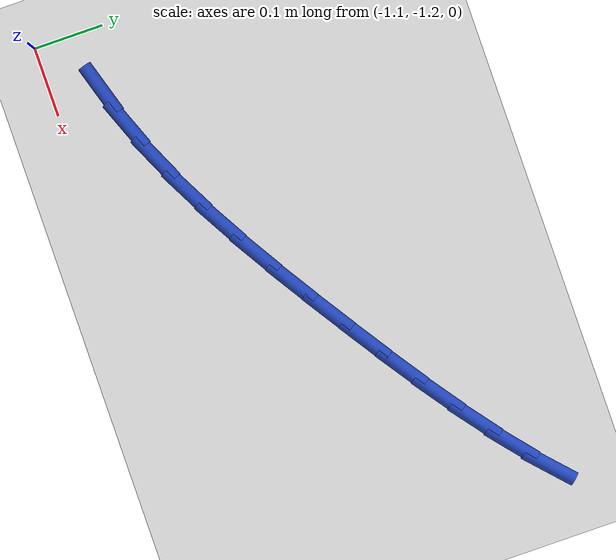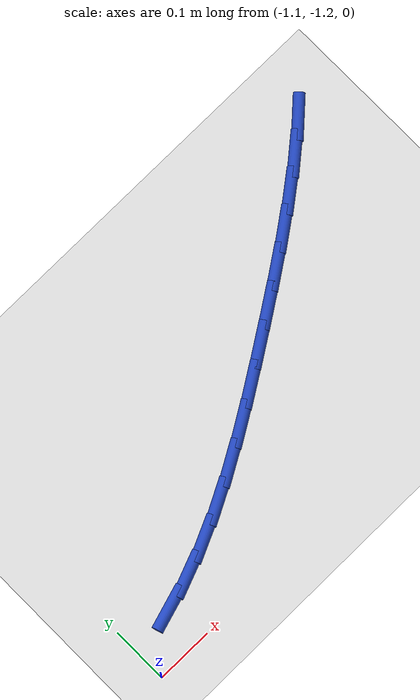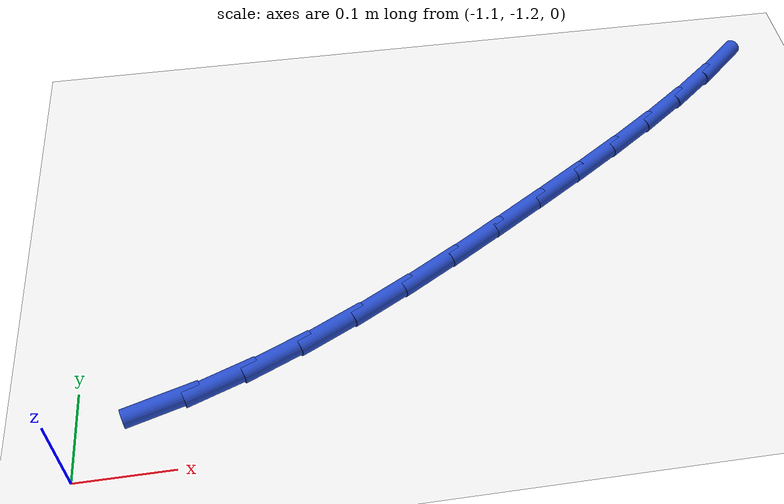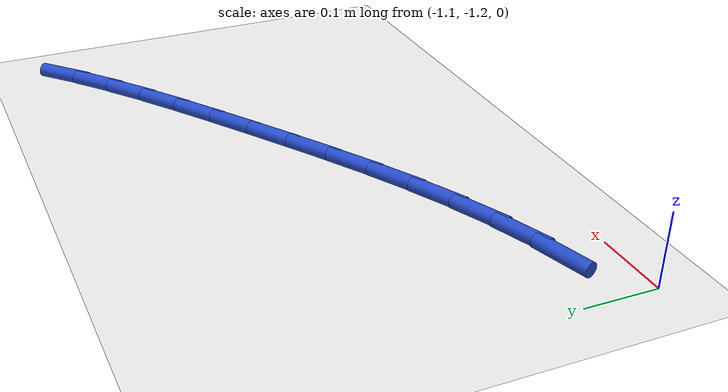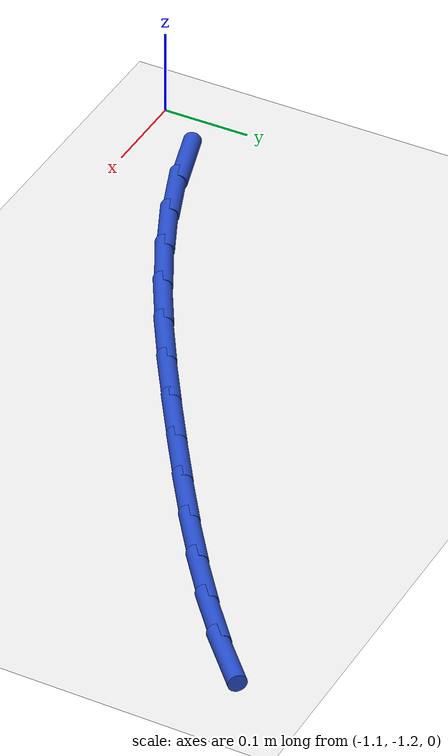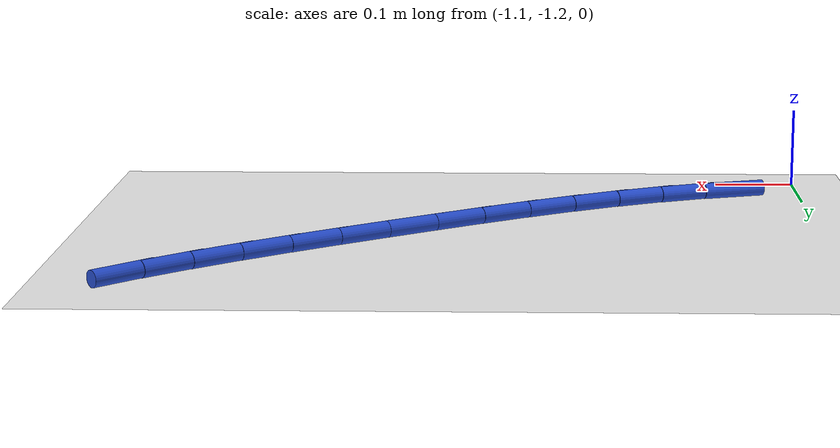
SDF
<sdf version="1.6">
 <world name="default">
  <model name="ground_plane">
   <static>1</static>
   <link name="link">
    <collision name="collision">
     <geometry><plane><normal>0 0 1</normal><size>100 100</size></plane></geometry>
     <surface><friction><ode><mu>100</mu><mu2>50</mu2></ode></friction></surface>
    </collision>
    <visual name="visual">
     <cast_shadows>0</cast_shadows>
     <geometry><plane><normal>0 0 1</normal><size>100 100</size></plane></geometry>
     <material>
      <script><uri>file://media/materials/scripts/gazebo.material</uri><name>Gazebo/WhiteGlow</name></script>
     </material>
    </visual>
   </link>
  </model>
  <model name="line">
   <link name="link_84">
    <pose>-1.0149378703500878 -1.1302086571302878 0.01 0 1.57 0.29650044228940037</pose>
    <collision name="collision">
     <geometry><cylinder><radius>0.01</radius><length>0.08</length></cylinder></geometry>
    </collision>
    <visual name="visual">
     <material>
      <script><name>Gazebo/Blue</name><uri>file://media/materials/scripts/gazebo.material</uri></script>
     </material>
     <geometry><cylinder><radius>0.01</radius><length>0.08</length></cylinder></geometry>
    </visual>
   </link>
   <link name="link_85">
    <pose>-0.956949041623593 -1.112492724698729 0.01 0 1.57 0.37225031968562455</pose>
    <collision name="collision">
     <geometry><cylinder><radius>0.01</radius><length>0.08</length></cylinder></geometry>
    </collision>
    <visual name="visual">
     <material>
      <script><name>Gazebo/Blue</name><uri>file://media/materials/scripts/gazebo.material</uri></script>
     </material>
     <geometry><cylinder><radius>0.01</radius><length>0.08</length></cylinder></geometry>
    </visual>
   </link>
   <link name="link_86">
    <pose>-0.8992321026304995 -1.0899568988114785 0.01 0 1.57 0.43426068426875075</pose>
    <collision name="collision">
     <geometry><cylinder><radius>0.01</radius><length>0.08</length></cylinder></geometry>
    </collision>
    <visual name="visual">
     <material>
      <script><name>Gazebo/Blue</name><uri>file://media/materials/scripts/gazebo.material</uri></script>
     </material>
     <geometry><cylinder><radius>0.01</radius><length>0.08</length></cylinder></geometry>
    </visual>
   </link>
   <link name="link_87">
    <pose>-0.841873107891628 -1.0633544854149024 0.01 0 1.57 0.4839333926143527</pose>
    <collision name="collision">
     <geometry><cylinder><radius>0.01</radius><length>0.08</length></cylinder></geometry>
    </collision>
    <visual name="visual">
     <material>
      <script><name>Gazebo/Blue</name><uri>file://media/materials/scripts/gazebo.material</uri></script>
     </material>
     <geometry><cylinder><radius>0.01</radius><length>0.08</length></cylinder></geometry>
    </visual>
   </link>
   <link name="link_88">
    <pose>-0.7849581119278013 -1.0334387904553686 0.01 0 1.57 0.5225580961230015</pose>
    <collision name="collision">
     <geometry><cylinder><radius>0.01</radius><length>0.08</length></cylinder></geometry>
    </collision>
    <visual name="visual">
     <material>
      <script><name>Gazebo/Blue</name><uri>file://media/materials/scripts/gazebo.material</uri></script>
     </material>
     <geometry><cylinder><radius>0.01</radius><length>0.08</length></cylinder></geometry>
    </visual>
   </link>
   <link name="link_89">
    <pose>-0.7285731692598401 -1.0009631198792437 0.01 0 1.57 0.5511743682153489</pose>
    <collision name="collision">
     <geometry><cylinder><radius>0.01</radius><length>0.08</length></cylinder></geometry>
    </collision>
    <visual name="visual">
     <material>
      <script><name>Gazebo/Blue</name><uri>file://media/materials/scripts/gazebo.material</uri></script>
     </material>
     <geometry><cylinder><radius>0.01</radius><length>0.08</length></cylinder></geometry>
    </visual>
   </link>
   <link name="link_90">
    <pose>-0.6728043344085678 -0.9666807796328958 0.01 0 1.57 0.5705108184547375</pose>
    <collision name="collision">
     <geometry><cylinder><radius>0.01</radius><length>0.08</length></cylinder></geometry>
    </collision>
    <visual name="visual">
     <material>
      <script><name>Gazebo/Blue</name><uri>file://media/materials/scripts/gazebo.material</uri></script>
     </material>
     <geometry><cylinder><radius>0.01</radius><length>0.08</length></cylinder></geometry>
    </visual>
   </link>
   <link name="link_91">
    <pose>-0.6177376618948046 -0.9313450756626911 0.01 0 1.57 0.5811170186675361</pose>
    <collision name="collision">
     <geometry><cylinder><radius>0.01</radius><length>0.08</length></cylinder></geometry>
    </collision>
    <visual name="visual">
     <material>
      <script><name>Gazebo/Blue</name><uri>file://media/materials/scripts/gazebo.material</uri></script>
     </material>
     <geometry><cylinder><radius>0.01</radius><length>0.08</length></cylinder></geometry>
    </visual>
   </link>
   <link name="link_92">
    <pose>-0.5634611890247541 -0.8956981275606215 0.01 0 1.57 0.5896921710618996</pose>
    <collision name="collision">
     <geometry><cylinder><radius>0.01</radius><length>0.08</length></cylinder></geometry>
    </collision>
    <visual name="visual">
     <material>
      <script><name>Gazebo/Blue</name><uri>file://media/materials/scripts/gazebo.material</uri></script>
     </material>
     <geometry><cylinder><radius>0.01</radius><length>0.08</length></cylinder></geometry>
    </visual>
   </link>
   <link name="link_93">
    <pose>-0.5101442759489228 -0.8600232527888209 0.01 0 1.57 0.6052128747050124</pose>
    <collision name="collision">
     <geometry><cylinder><radius>0.01</radius><length>0.08</length></cylinder></geometry>
    </collision>
    <visual name="visual">
     <material>
      <script><name>Gazebo/Blue</name><uri>file://media/materials/scripts/gazebo.material</uri></script>
     </material>
     <geometry><cylinder><radius>0.01</radius><length>0.08</length></cylinder></geometry>
    </visual>
   </link>
   <link name="link_94">
    <pose>-0.45806444585882133 -0.8239935413388355 0.01 0 1.57 0.6285949803829587</pose>
    <collision name="collision">
     <geometry><cylinder><radius>0.01</radius><length>0.08</length></cylinder></geometry>
    </collision>
    <visual name="visual">
     <material>
      <script><name>Gazebo/Blue</name><uri>file://media/materials/scripts/gazebo.material</uri></script>
     </material>
     <geometry><cylinder><radius>0.01</radius><length>0.08</length></cylinder></geometry>
    </visual>
   </link>
   <link name="link_95">
    <pose>-0.4075067100299726 -0.78723983739878 0.01 0 1.57 0.6601439839593104</pose>
    <collision name="collision">
     <geometry><cylinder><radius>0.01</radius><length>0.08</length></cylinder></geometry>
    </collision>
    <visual name="visual">
     <material>
      <script><name>Gazebo/Blue</name><uri>file://media/materials/scripts/gazebo.material</uri></script>
     </material>
     <geometry><cylinder><radius>0.01</radius><length>0.08</length></cylinder></geometry>
    </visual>
   </link>
   <link name="link_96">
    <pose>-0.3587560797379022 -0.7493929851567719 0.01 0 1.57 0.7001157429507779</pose>
    <collision name="collision">
     <geometry><cylinder><radius>0.01</radius><length>0.08</length></cylinder></geometry>
    </collision>
    <visual name="visual">
     <material>
      <script><name>Gazebo/Blue</name><uri>file://media/materials/scripts/gazebo.material</uri></script>
     </material>
     <geometry><cylinder><radius>0.01</radius><length>0.08</length></cylinder></geometry>
    </visual>
   </link>
   <link name="link_97">
    <pose>-0.31209756625813373 -0.7100838288009266 0.01 0 1.57 0.7486470348860566</pose>
    <collision name="collision">
     <geometry><cylinder><radius>0.01</radius><length>0.08</length></cylinder></geometry>
    </collision>
    <visual name="visual">
     <material>
      <script><name>Gazebo/Blue</name><uri>file://media/materials/scripts/gazebo.material</uri></script>
     </material>
     <geometry><cylinder><radius>0.01</radius><length>0.08</length></cylinder></geometry>
    </visual>
   </link>
  </model>
 </world>
</sdf>
